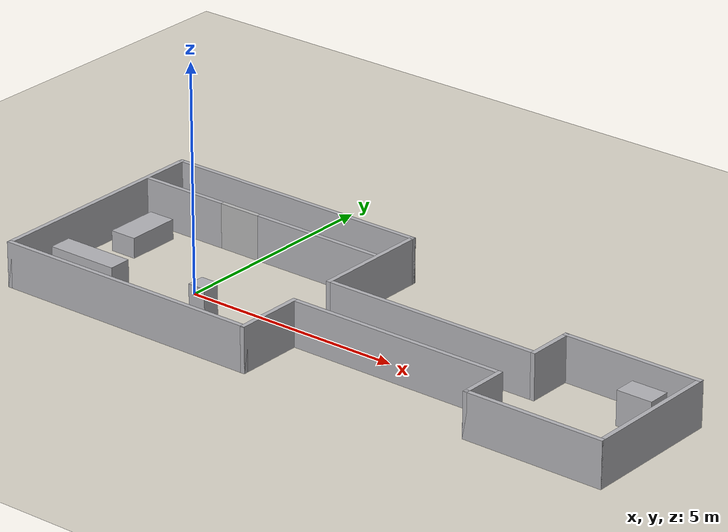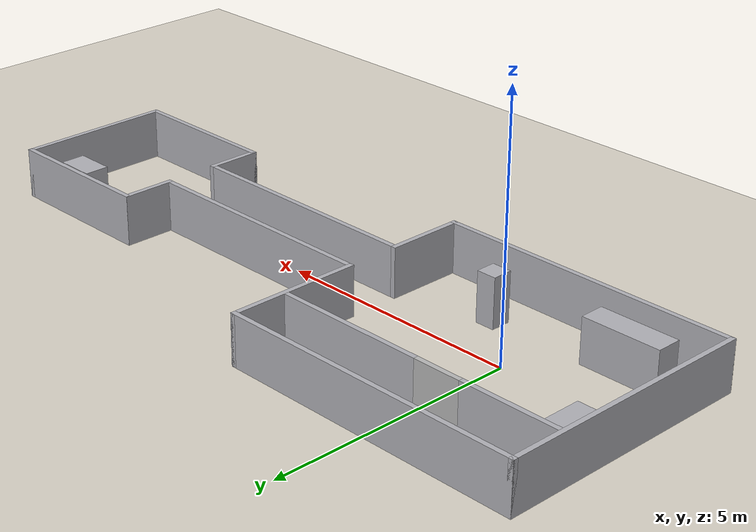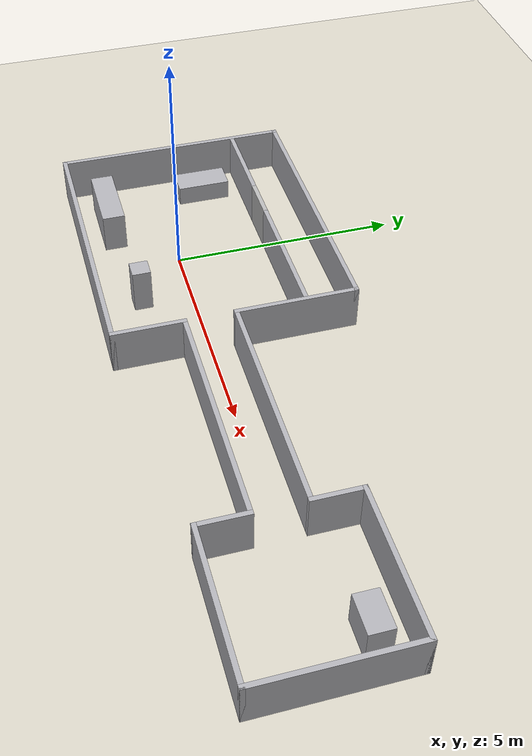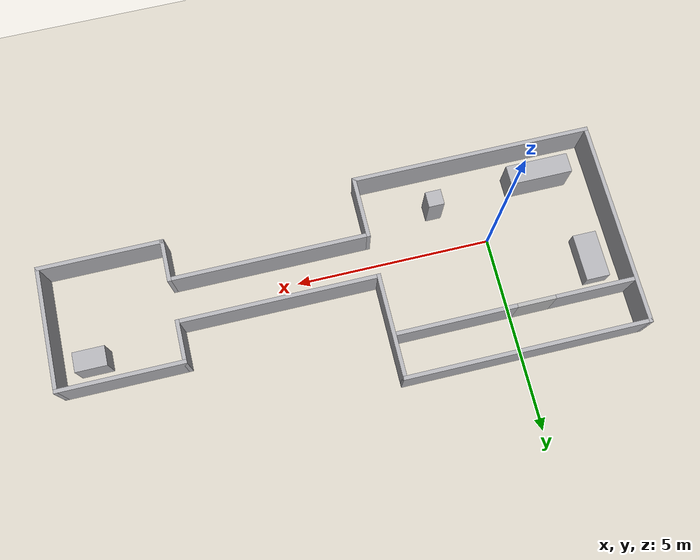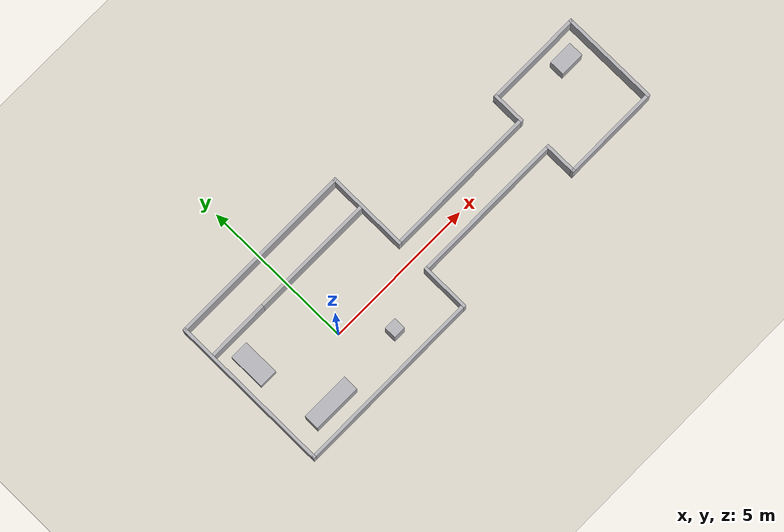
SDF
<?xml version="1.0"?>
<sdf version="1.10">
  <world name="bottlenecks_door_closed">
    <physics name="1ms" type="ignored">
      <max_step_size>0.001</max_step_size>
      <real_time_factor>1.0</real_time_factor>
    </physics>
    <plugin filename="gz-sim-physics-system" name="gz::sim::systems::Physics"/>
    <plugin filename="gz-sim-user-commands-system" name="gz::sim::systems::UserCommands"/>
    <plugin filename="gz-sim-scene-broadcaster-system" name="gz::sim::systems::SceneBroadcaster"/>
    <plugin filename="gz-sim-sensors-system" name="gz::sim::systems::Sensors"/>

    <light type="directional" name="sun">
      <cast_shadows>false</cast_shadows>
      <pose>0 0 10 0 0 0</pose>
      <diffuse>0.9 0.9 0.9 1</diffuse>
      <specular>0.2 0.2 0.2 1</specular>
      <direction>-0.4 0.2 -0.9</direction>
    </light>

    <model name="ground_plane">
      <static>true</static>
      <link name="link">
        <collision name="collision">
          <geometry><plane><normal>0 0 1</normal><size>200 200</size></plane></geometry>
          <surface><friction><ode><mu>1.0</mu><mu2>1.0</mu2></ode></friction></surface>
        </collision>
        <visual name="visual">
          <geometry><plane><normal>0 0 1</normal><size>200 200</size></plane></geometry>
          <material><ambient>0.85 0.83 0.78 1</ambient><diffuse>0.85 0.83 0.78 1</diffuse></material>
        </visual>
      </link>
    </model>

    <model name="walls">
      <static>true</static>
      <link name="link">
        <!-- 大廳南牆　大廳內部 x -3~3、y -2~2 -->
        <collision name="c_0"><pose>0.0000 -2.0500 0.5000 0 0 0.000000</pose><geometry><box><size>6.2000 0.1000 1.0000</size></box></geometry></collision>
        <visual name="v_0"><pose>0.0000 -2.0500 0.5000 0 0 0.000000</pose><geometry><box><size>6.2000 0.1000 1.0000</size></box></geometry><material><ambient>0.7 0.7 0.72 1</ambient><diffuse>0.7 0.7 0.72 1</diffuse></material></visual>
        <!-- 西牆（大廳＋北走廊） -->
        <collision name="c_1"><pose>-3.0500 0.5450 0.5000 0 0 0.000000</pose><geometry><box><size>0.1000 5.2900 1.0000</size></box></geometry></collision>
        <visual name="v_1"><pose>-3.0500 0.5450 0.5000 0 0 0.000000</pose><geometry><box><size>0.1000 5.2900 1.0000</size></box></geometry><material><ambient>0.7 0.7 0.72 1</ambient><diffuse>0.7 0.7 0.72 1</diffuse></material></visual>
        <!-- 大廳北牆 西段　x -3.0~-1.0 -->
        <collision name="c_2"><pose>-2.0000 2.0500 0.5000 0 0 0.000000</pose><geometry><box><size>2.0000 0.1000 1.0000</size></box></geometry></collision>
        <visual name="v_2"><pose>-2.0000 2.0500 0.5000 0 0 0.000000</pose><geometry><box><size>2.0000 0.1000 1.0000</size></box></geometry><material><ambient>0.7 0.7 0.72 1</ambient><diffuse>0.7 0.7 0.72 1</diffuse></material></visual>
        <!-- 大廳北牆 東段　x -0.033~3.0　★ 中間就是 0.967 m 窄門口（x -1.0~-0.033） -->
        <collision name="c_3"><pose>1.4835 2.0500 0.5000 0 0 0.000000</pose><geometry><box><size>3.0330 0.1000 1.0000</size></box></geometry></collision>
        <visual name="v_3"><pose>1.4835 2.0500 0.5000 0 0 0.000000</pose><geometry><box><size>3.0330 0.1000 1.0000</size></box></geometry><material><ambient>0.7 0.7 0.72 1</ambient><diffuse>0.7 0.7 0.72 1</diffuse></material></visual>
        <!-- 北走廊北牆　北走廊淨寬 0.99（y 2.10~3.09）★ 出門口要立刻 90 度轉彎＝實車四版沒過的窄轉角 -->
        <collision name="c_4"><pose>0.0000 3.1400 0.5000 0 0 0.000000</pose><geometry><box><size>6.2000 0.1000 1.0000</size></box></geometry></collision>
        <visual name="v_4"><pose>0.0000 3.1400 0.5000 0 0 0.000000</pose><geometry><box><size>6.2000 0.1000 1.0000</size></box></geometry><material><ambient>0.7 0.7 0.72 1</ambient><diffuse>0.7 0.7 0.72 1</diffuse></material></visual>
        <!-- 大廳東牆 南段　y -2.1~-0.495 -->
        <collision name="c_5"><pose>3.0500 -1.2975 0.5000 0 0 0.000000</pose><geometry><box><size>0.1000 1.6050 1.0000</size></box></geometry></collision>
        <visual name="v_5"><pose>3.0500 -1.2975 0.5000 0 0 0.000000</pose><geometry><box><size>0.1000 1.6050 1.0000</size></box></geometry><material><ambient>0.7 0.7 0.72 1</ambient><diffuse>0.7 0.7 0.72 1</diffuse></material></visual>
        <!-- 大廳東牆 北段　y 0.495~3.19（也封住北走廊東端） -->
        <collision name="c_6"><pose>3.0500 1.8425 0.5000 0 0 0.000000</pose><geometry><box><size>0.1000 2.6950 1.0000</size></box></geometry></collision>
        <visual name="v_6"><pose>3.0500 1.8425 0.5000 0 0 0.000000</pose><geometry><box><size>0.1000 2.6950 1.0000</size></box></geometry><material><ambient>0.7 0.7 0.72 1</ambient><diffuse>0.7 0.7 0.72 1</diffuse></material></visual>
        <!-- 東走廊北牆　東走廊淨寬 0.99（y ±0.495），直進直出＝實車「貼牆但到得了」 -->
        <collision name="c_7"><pose>5.5500 0.5450 0.5000 0 0 0.000000</pose><geometry><box><size>4.9000 0.1000 1.0000</size></box></geometry></collision>
        <visual name="v_7"><pose>5.5500 0.5450 0.5000 0 0 0.000000</pose><geometry><box><size>4.9000 0.1000 1.0000</size></box></geometry><material><ambient>0.7 0.7 0.72 1</ambient><diffuse>0.7 0.7 0.72 1</diffuse></material></visual>
        <!-- 東走廊南牆 -->
        <collision name="c_8"><pose>5.5500 -0.5450 0.5000 0 0 0.000000</pose><geometry><box><size>4.9000 0.1000 1.0000</size></box></geometry></collision>
        <visual name="v_8"><pose>5.5500 -0.5450 0.5000 0 0 0.000000</pose><geometry><box><size>4.9000 0.1000 1.0000</size></box></geometry><material><ambient>0.7 0.7 0.72 1</ambient><diffuse>0.7 0.7 0.72 1</diffuse></material></visual>
        <!-- 盡頭房 西牆 南段 -->
        <collision name="c_9"><pose>8.0500 -1.0475 0.5000 0 0 0.000000</pose><geometry><box><size>0.1000 1.1050 1.0000</size></box></geometry></collision>
        <visual name="v_9"><pose>8.0500 -1.0475 0.5000 0 0 0.000000</pose><geometry><box><size>0.1000 1.1050 1.0000</size></box></geometry><material><ambient>0.7 0.7 0.72 1</ambient><diffuse>0.7 0.7 0.72 1</diffuse></material></visual>
        <!-- 盡頭房 西牆 北段 -->
        <collision name="c_10"><pose>8.0500 1.0475 0.5000 0 0 0.000000</pose><geometry><box><size>0.1000 1.1050 1.0000</size></box></geometry></collision>
        <visual name="v_10"><pose>8.0500 1.0475 0.5000 0 0 0.000000</pose><geometry><box><size>0.1000 1.1050 1.0000</size></box></geometry><material><ambient>0.7 0.7 0.72 1</ambient><diffuse>0.7 0.7 0.72 1</diffuse></material></visual>
        <!-- 盡頭房 南牆　房內 x 8.1~11.1、y -1.5~1.5（3×3 m，迴轉要三點轉向） -->
        <collision name="c_11"><pose>9.6000 -1.5500 0.5000 0 0 0.000000</pose><geometry><box><size>3.2000 0.1000 1.0000</size></box></geometry></collision>
        <visual name="v_11"><pose>9.6000 -1.5500 0.5000 0 0 0.000000</pose><geometry><box><size>3.2000 0.1000 1.0000</size></box></geometry><material><ambient>0.7 0.7 0.72 1</ambient><diffuse>0.7 0.7 0.72 1</diffuse></material></visual>
        <!-- 盡頭房 北牆 -->
        <collision name="c_12"><pose>9.6000 1.5500 0.5000 0 0 0.000000</pose><geometry><box><size>3.2000 0.1000 1.0000</size></box></geometry></collision>
        <visual name="v_12"><pose>9.6000 1.5500 0.5000 0 0 0.000000</pose><geometry><box><size>3.2000 0.1000 1.0000</size></box></geometry><material><ambient>0.7 0.7 0.72 1</ambient><diffuse>0.7 0.7 0.72 1</diffuse></material></visual>
        <!-- 盡頭房 東牆 -->
        <collision name="c_13"><pose>11.1500 0.0000 0.5000 0 0 0.000000</pose><geometry><box><size>0.1000 3.2000 1.0000</size></box></geometry></collision>
        <visual name="v_13"><pose>11.1500 0.0000 0.5000 0 0 0.000000</pose><geometry><box><size>0.1000 3.2000 1.0000</size></box></geometry><material><ambient>0.7 0.7 0.72 1</ambient><diffuse>0.7 0.7 0.72 1</diffuse></material></visual>
        <!-- 家具：銀行櫃檯 -->
        <collision name="c_14"><pose>-1.6000 -1.3000 0.4500 0 0 0.000000</pose><geometry><box><size>1.6000 0.5000 0.9000</size></box></geometry></collision>
        <visual name="v_14"><pose>-1.6000 -1.3000 0.4500 0 0 0.000000</pose><geometry><box><size>1.6000 0.5000 0.9000</size></box></geometry><material><ambient>0.7 0.7 0.72 1</ambient><diffuse>0.7 0.7 0.72 1</diffuse></material></visual>
        <!-- 家具：柱子 -->
        <collision name="c_15"><pose>1.2000 -1.1000 0.5000 0 0 0.000000</pose><geometry><box><size>0.4000 0.4000 1.0000</size></box></geometry></collision>
        <visual name="v_15"><pose>1.2000 -1.1000 0.5000 0 0 0.000000</pose><geometry><box><size>0.4000 0.4000 1.0000</size></box></geometry><material><ambient>0.7 0.7 0.72 1</ambient><diffuse>0.7 0.7 0.72 1</diffuse></material></visual>
        <!-- 家具：沙發 -->
        <collision name="c_16"><pose>-2.3500 1.1000 0.2250 0 0 0.000000</pose><geometry><box><size>0.6000 1.2000 0.4500</size></box></geometry></collision>
        <visual name="v_16"><pose>-2.3500 1.1000 0.2250 0 0 0.000000</pose><geometry><box><size>0.6000 1.2000 0.4500</size></box></geometry><material><ambient>0.7 0.7 0.72 1</ambient><diffuse>0.7 0.7 0.72 1</diffuse></material></visual>
        <!-- 家具：盡頭房的桌子（讓迴轉更難） -->
        <collision name="c_17"><pose>10.3000 0.9000 0.3750 0 0 0.000000</pose><geometry><box><size>0.8000 0.5000 0.7500</size></box></geometry></collision>
        <visual name="v_17"><pose>10.3000 0.9000 0.3750 0 0 0.000000</pose><geometry><box><size>0.8000 0.5000 0.7500</size></box></geometry><material><ambient>0.7 0.7 0.72 1</ambient><diffuse>0.7 0.7 0.72 1</diffuse></material></visual>
        <!-- 實驗用：把北邊 0.967 m 窄門口擋起來 -->
        <collision name="c_door"><pose>-0.5165 2.0500 0.5000 0 0 0</pose><geometry><box><size>0.9670 0.1000 1.0000</size></box></geometry></collision>
        <visual name="v_door"><pose>-0.5165 2.0500 0.5000 0 0 0</pose><geometry><box><size>0.9670 0.1000 1.0000</size></box></geometry></visual>
      </link>
    </model>
  </world>
</sdf>
